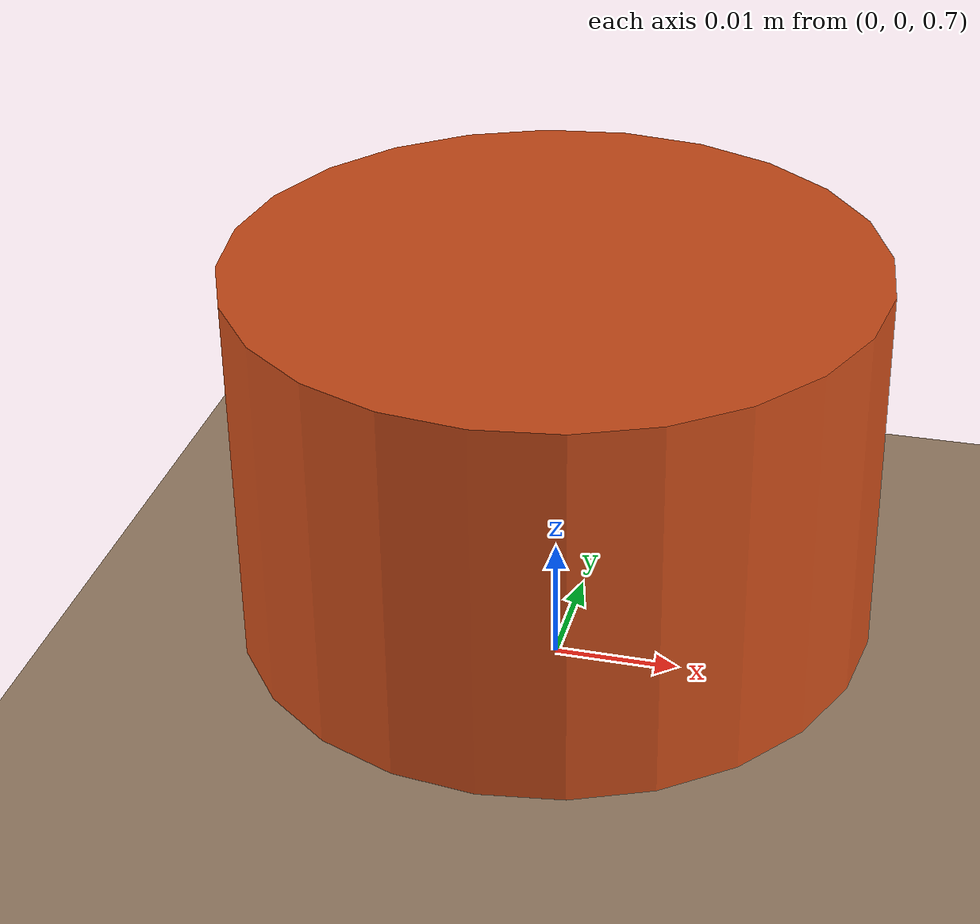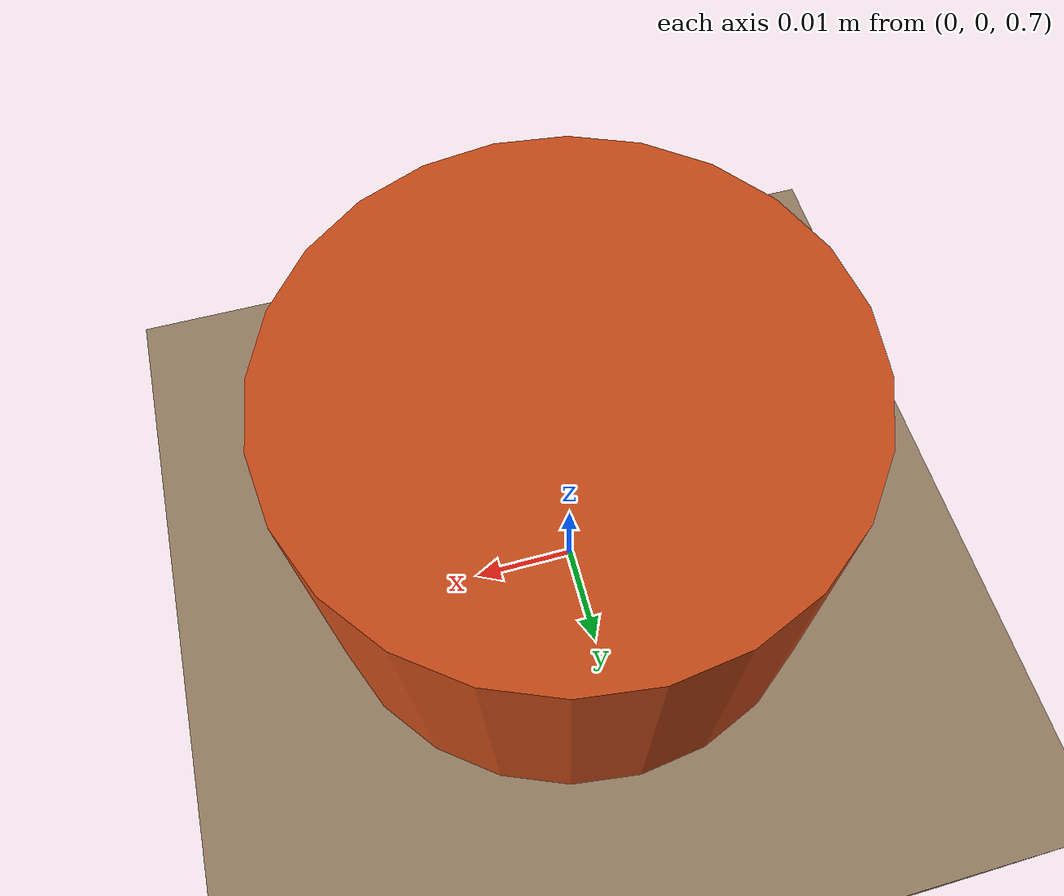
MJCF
<mujoco model="minimal_world">

  <compiler angle="radian" coordinate="local" inertiafromgeom="auto"/>

  <option timestep="0.002" iterations="50" solver="Newton" tolerance="1e-10">
    <flag warmstart="enable" contact="enable"/>
  </option>

  <size njmax="500" nconmax="100"/>

  <default>
    <geom friction="0.7 0.005 0.0001" condim="4" contype="1" conaffinity="1"/>
    <joint limited="false" damping="0.1"/>
  </default>

  <asset>
    <texture name="grid" type="2d" builtin="checker" width="512" height="512"
             rgb1="0.2 0.2 0.2" rgb2="0.3 0.3 0.3"/>
    <material name="grid_mat" texture="grid" texrepeat="1 1" texuniform="true" reflectance="0.1"/>
    <material name="table_mat" rgba="0.6 0.5 0.4 1.0"/>
    <material name="ee_mat" rgba="0.8 0.3 0.1 1.0"/>
  </asset>

  <worldbody>
    <!-- Ground plane -->
    <geom name="ground" type="plane" size="2 2 0.1" material="grid_mat" contype="1" conaffinity="1"/>

    <!-- Table: 0.8m x 0.6m x 0.05m thick, top at z=0.7m -->
    <body name="table" pos="0 0 0.675">
      <geom name="table_top" type="box" size="0.4 0.3 0.025" material="table_mat"
            contype="1" conaffinity="1" mass="10.0"/>
    </body>

    <!-- End-effector: free-floating body with mocap control for kinematic placeholder -->
    <body name="ee" pos="0 0 0.72" mocap="true">
      <!-- Small cylindrical EE proxy (5cm diameter, 3cm height) -->
      <geom name="ee_tip" type="cylinder" size="0.025 0.015"
            material="ee_mat" contype="1" conaffinity="1" mass="0.5"/>

      <!-- Sensor site for precise pose queries -->
      <site name="ee_site" pos="0 0 0" size="0.005"/>
    </body>
  </worldbody>

  <sensor>
    <!-- Position sensor for EE -->
    <framepos name="ee_pos" objtype="site" objname="ee_site"/>

    <!-- Contact force sensor -->
    <touch name="ee_contact" site="ee_site"/>
  </sensor>

  <actuator>
    <!-- Mocap actuator for kinematic control (placeholder for real robot actuation) -->
  </actuator>

</mujoco>
